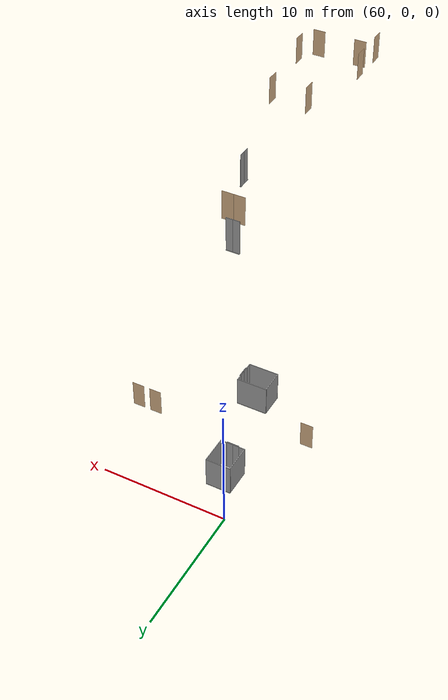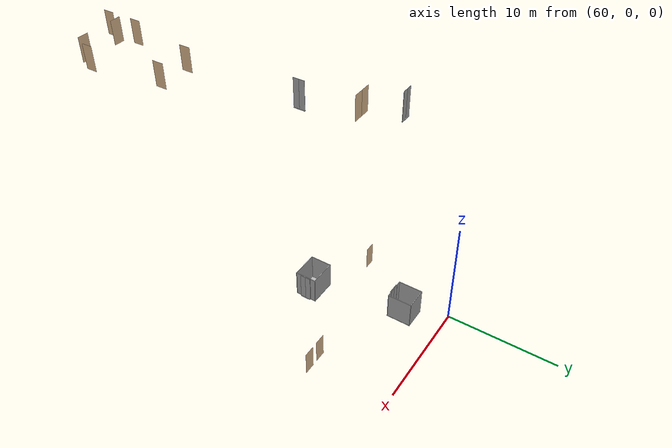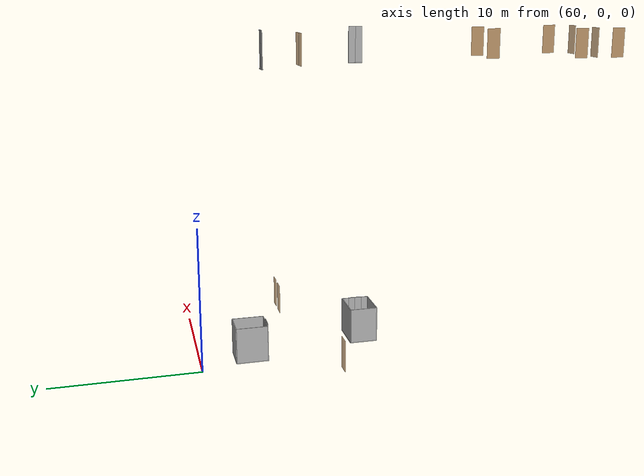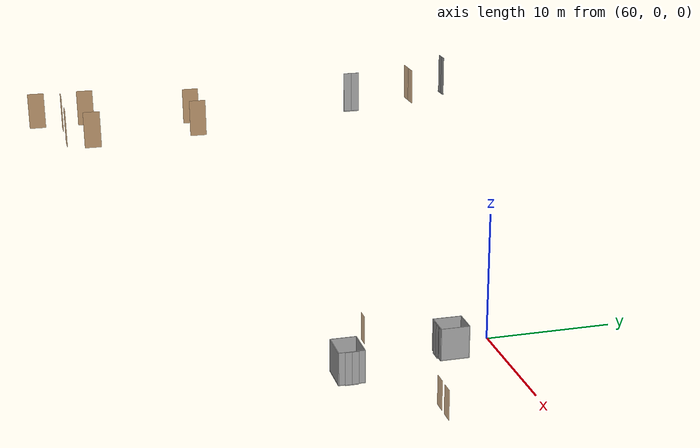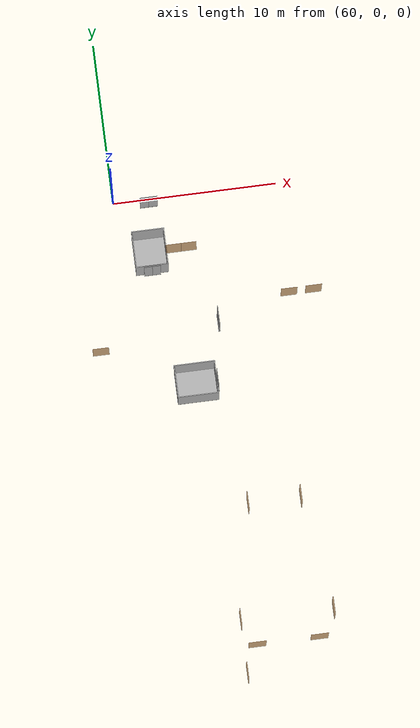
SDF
<sdf version="1.7">
 <world name="sim_world">
  <model name="l1_door12">
   <pose>58.1 -9.25 0.0 0 0 3.141592653589793</pose>
   <plugin name="door" filename="libdoor.so">
    <v_max_door>0.5</v_max_door>
    <a_max_door>0.3</a_max_door>
    <a_nom_door>0.15</a_nom_door>
    <dx_min_door>0.01</dx_min_door>
    <f_max_door>500.0</f_max_door>
    <door name="l1_door12" type="SwingDoor" left_joint_name="left_joint" right_joint_name="empty_joint"/>
   </plugin>
   <link name="left">
    <pose>0 0 1.11 0 0 0</pose>
    <visual name="left_visual">
     <geometry><box><size>0.99 0.03 2.2</size></box></geometry>
     <material>
      <ambient>0.5 0.25 0 0.6</ambient>
      <diffuse>0.5 0.25 0 0.6</diffuse>
      <pbr><metal><metalness>0.0</metalness></metal></pbr>
     </material>
    </visual>
    <collision name="left_collision">
     <geometry><box><size>0.99 0.03 2.2</size></box></geometry>
     <surface><contact><collide_bitmask>0x02</collide_bitmask></contact></surface>
    </collision>
    <inertial>
     <mass>50.0</mass>
     <inertia><ixx>20.17041666666667</ixx><iyy>24.250416666666673</iyy><izz>4.0875</izz></inertia>
    </inertial>
   </link>
   <joint name="left_joint" type="revolute">
    <parent>world</parent>
    <child>left</child>
    <axis><xyz>0 0 1</xyz><limit><lower>-1.57</lower><upper>0</upper></limit></axis>
    <pose>0.5 0 0 0 0 0</pose>
   </joint>
  </model>
  <model name="l1_door10">
   <pose>69.9 -7.0 0.0 0 0 0.0</pose>
   <plugin name="door" filename="libdoor.so">
    <v_max_door>0.5</v_max_door>
    <a_max_door>0.3</a_max_door>
    <a_nom_door>0.15</a_nom_door>
    <dx_min_door>0.01</dx_min_door>
    <f_max_door>500.0</f_max_door>
    <door name="l1_door10" type="SwingDoor" left_joint_name="left_joint" right_joint_name="empty_joint"/>
   </plugin>
   <link name="left">
    <pose>0 0 1.11 0 0 0</pose>
    <visual name="left_visual">
     <geometry><box><size>0.99 0.03 2.2</size></box></geometry>
     <material>
      <ambient>0.5 0.25 0 0.6</ambient>
      <diffuse>0.5 0.25 0 0.6</diffuse>
      <pbr><metal><metalness>0.0</metalness></metal></pbr>
     </material>
    </visual>
    <collision name="left_collision">
     <geometry><box><size>0.99 0.03 2.2</size></box></geometry>
     <surface><contact><collide_bitmask>0x02</collide_bitmask></contact></surface>
    </collision>
    <inertial>
     <mass>50.0</mass>
     <inertia><ixx>20.17041666666667</ixx><iyy>24.250416666666673</iyy><izz>4.0875</izz></inertia>
    </inertial>
   </link>
   <joint name="left_joint" type="revolute">
    <parent>world</parent>
    <child>left</child>
    <axis><xyz>0 0 1</xyz><limit><lower>-1.57</lower><upper>0</upper></limit></axis>
    <pose>0.5 0 0 0 0 0</pose>
   </joint>
  </model>
  <model name="l1_door8">
   <pose>71.4 -7.0 0.0 0 0 3.141592653589793</pose>
   <plugin name="door" filename="libdoor.so">
    <v_max_door>0.5</v_max_door>
    <a_max_door>0.3</a_max_door>
    <a_nom_door>0.15</a_nom_door>
    <dx_min_door>0.01</dx_min_door>
    <f_max_door>500.0</f_max_door>
    <door name="l1_door8" type="SwingDoor" left_joint_name="empty_joint" right_joint_name="right_joint"/>
   </plugin>
   <link name="right">
    <pose>0 0 1.11 0 0 0</pose>
    <visual name="right_visual">
     <geometry><box><size>0.99 0.03 2.2</size></box></geometry>
     <material>
      <ambient>0.5 0.25 0 0.6</ambient>
      <diffuse>0.5 0.25 0 0.6</diffuse>
      <pbr><metal><metalness>0.0</metalness></metal></pbr>
     </material>
    </visual>
    <collision name="right_collision">
     <geometry><box><size>0.99 0.03 2.2</size></box></geometry>
     <surface><contact><collide_bitmask>0x02</collide_bitmask></contact></surface>
    </collision>
    <inertial>
     <mass>50.0</mass>
     <inertia><ixx>20.17041666666667</ixx><iyy>24.250416666666673</iyy><izz>4.0875</izz></inertia>
    </inertial>
   </link>
   <joint name="right_joint" type="revolute">
    <parent>world</parent>
    <child>right</child>
    <axis><xyz>0 0 1</xyz><limit><lower>0</lower><upper>1.57</upper></limit></axis>
    <pose>0.5 0 0 0 0 0</pose>
   </joint>
  </model>
  <model name="door4">
   <pose>63.325 -7.5 20.0 0 0 3.141592653589793</pose>
   <link name="right">
    <pose>0.4375 0 1.11 0 0 0</pose>
    <visual name="right_visual">
     <geometry><box><size>0.865 0.03 2.2</size></box></geometry>
     <material>
      <ambient>0.5 0.25 0 0.6</ambient>
      <diffuse>0.5 0.25 0 0.6</diffuse>
      <pbr><metal><metalness>0.0</metalness></metal></pbr>
     </material>
    </visual>
    <collision name="right_collision">
     <geometry><box><size>0.865 0.03 2.2</size></box></geometry>
     <surface><contact><collide_bitmask>0x02</collide_bitmask></contact></surface>
    </collision>
    <inertial>
     <mass>50.0</mass>
     <inertia><ixx>20.17041666666667</ixx><iyy>23.284270833333338</iyy><izz>3.121354166666667</izz></inertia>
    </inertial>
   </link>
   <joint name="right_joint" type="revolute">
    <parent>world</parent>
    <child>right</child>
    <axis><xyz>0 0 1</xyz><limit><lower>0</lower><upper>1.57</upper></limit></axis>
    <pose>0.4375 0 0 0 0 0</pose>
   </joint>
   <link name="left">
    <pose>-0.4375 0 1.11 0 0 0</pose>
    <visual name="left_visual">
     <geometry><box><size>0.865 0.03 2.2</size></box></geometry>
     <material>
      <ambient>0.5 0.25 0 0.6</ambient>
      <diffuse>0.5 0.25 0 0.6</diffuse>
      <pbr><metal><metalness>0.0</metalness></metal></pbr>
     </material>
    </visual>
    <collision name="left_collision">
     <geometry><box><size>0.865 0.03 2.2</size></box></geometry>
     <surface><contact><collide_bitmask>0x02</collide_bitmask></contact></surface>
    </collision>
    <inertial>
     <mass>50.0</mass>
     <inertia><ixx>20.17041666666667</ixx><iyy>23.284270833333338</iyy><izz>3.121354166666667</izz></inertia>
    </inertial>
   </link>
   <joint name="left_joint" type="revolute">
    <parent>world</parent>
    <child>left</child>
    <axis><xyz>0 0 1</xyz><limit><lower>-1.57</lower><upper>0</upper></limit></axis>
    <pose>-0.4375 0 0 0 0 0</pose>
   </joint>
   <plugin name="door" filename="libdoor.so">
    <v_max_door>0.5</v_max_door>
    <a_max_door>0.3</a_max_door>
    <a_nom_door>0.15</a_nom_door>
    <dx_min_door>0.01</dx_min_door>
    <f_max_door>500.0</f_max_door>
    <door name="door4" type="DoubleSwingDoor" left_joint_name="left_joint" right_joint_name="right_joint"/>
   </plugin>
  </model>
  <model name="room18_door">
   <pose>65.2 -22.5 20.0 0 0 1.5707963267948966</pose>
   <plugin name="door" filename="libdoor.so">
    <v_max_door>0.5</v_max_door>
    <a_max_door>0.3</a_max_door>
    <a_nom_door>0.15</a_nom_door>
    <dx_min_door>0.01</dx_min_door>
    <f_max_door>500.0</f_max_door>
    <door name="room18_door" type="SwingDoor" left_joint_name="left_joint" right_joint_name="empty_joint"/>
   </plugin>
   <link name="left">
    <pose>0 0 1.11 0 0 0</pose>
    <visual name="left_visual">
     <geometry><box><size>0.99 0.03 2.2</size></box></geometry>
     <material>
      <ambient>0.5 0.25 0 0.6</ambient>
      <diffuse>0.5 0.25 0 0.6</diffuse>
      <pbr><metal><metalness>0.0</metalness></metal></pbr>
     </material>
    </visual>
    <collision name="left_collision">
     <geometry><box><size>0.99 0.03 2.2</size></box></geometry>
     <surface><contact><collide_bitmask>0x02</collide_bitmask></contact></surface>
    </collision>
    <inertial>
     <mass>50.0</mass>
     <inertia><ixx>20.17041666666667</ixx><iyy>24.250416666666673</iyy><izz>4.0875</izz></inertia>
    </inertial>
   </link>
   <joint name="left_joint" type="revolute">
    <parent>world</parent>
    <child>left</child>
    <axis><xyz>0 0 1</xyz><limit><lower>-1.57</lower><upper>0</upper></limit></axis>
    <pose>0.5 0 0 0 0 0</pose>
   </joint>
  </model>
  <model name="room19_door">
   <pose>63.95 -29.0 20.0 0 0 -1.5707963267948966</pose>
   <plugin name="door" filename="libdoor.so">
    <v_max_door>0.5</v_max_door>
    <a_max_door>0.3</a_max_door>
    <a_nom_door>0.15</a_nom_door>
    <dx_min_door>0.01</dx_min_door>
    <f_max_door>500.0</f_max_door>
    <door name="room19_door" type="SwingDoor" left_joint_name="empty_joint" right_joint_name="right_joint"/>
   </plugin>
   <link name="right">
    <pose>0 0 1.11 0 0 0</pose>
    <visual name="right_visual">
     <geometry><box><size>0.99 0.03 2.2</size></box></geometry>
     <material>
      <ambient>0.5 0.25 0 0.6</ambient>
      <diffuse>0.5 0.25 0 0.6</diffuse>
      <pbr><metal><metalness>0.0</metalness></metal></pbr>
     </material>
    </visual>
    <collision name="right_collision">
     <geometry><box><size>0.99 0.03 2.2</size></box></geometry>
     <surface><contact><collide_bitmask>0x02</collide_bitmask></contact></surface>
    </collision>
    <inertial>
     <mass>50.0</mass>
     <inertia><ixx>20.17041666666667</ixx><iyy>24.250416666666673</iyy><izz>4.0875</izz></inertia>
    </inertial>
   </link>
   <joint name="right_joint" type="revolute">
    <parent>world</parent>
    <child>right</child>
    <axis><xyz>0 0 1</xyz><limit><lower>0</lower><upper>1.57</upper></limit></axis>
    <pose>0.5 0 0 0 0 0</pose>
   </joint>
  </model>
  <model name="room20_door2">
   <pose>63.95 -32.0 20.0 0 0 -1.5707963267948966</pose>
   <plugin name="door" filename="libdoor.so">
    <v_max_door>0.5</v_max_door>
    <a_max_door>0.3</a_max_door>
    <a_nom_door>0.15</a_nom_door>
    <dx_min_door>0.01</dx_min_door>
    <f_max_door>500.0</f_max_door>
    <door name="room20_door2" type="SwingDoor" left_joint_name="empty_joint" right_joint_name="right_joint"/>
   </plugin>
   <link name="right">
    <pose>0 0 1.11 0 0 0</pose>
    <visual name="right_visual">
     <geometry><box><size>0.99 0.03 2.2</size></box></geometry>
     <material>
      <ambient>0.5 0.25 0 0.6</ambient>
      <diffuse>0.5 0.25 0 0.6</diffuse>
      <pbr><metal><metalness>0.0</metalness></metal></pbr>
     </material>
    </visual>
    <collision name="right_collision">
     <geometry><box><size>0.99 0.03 2.2</size></box></geometry>
     <surface><contact><collide_bitmask>0x02</collide_bitmask></contact></surface>
    </collision>
    <inertial>
     <mass>50.0</mass>
     <inertia><ixx>20.17041666666667</ixx><iyy>24.250416666666673</iyy><izz>4.0875</izz></inertia>
    </inertial>
   </link>
   <joint name="right_joint" type="revolute">
    <parent>world</parent>
    <child>right</child>
    <axis><xyz>0 0 1</xyz><limit><lower>0</lower><upper>1.57</upper></limit></axis>
    <pose>0.5 0 0 0 0 0</pose>
   </joint>
  </model>
  <model name="room20_door">
   <pose>64.7 -30.5 20.0 0 0 3.141592653589793</pose>
   <plugin name="door" filename="libdoor.so">
    <v_max_door>0.5</v_max_door>
    <a_max_door>0.3</a_max_door>
    <a_nom_door>0.15</a_nom_door>
    <dx_min_door>0.01</dx_min_door>
    <f_max_door>500.0</f_max_door>
    <door name="room20_door" type="SwingDoor" left_joint_name="left_joint" right_joint_name="empty_joint"/>
   </plugin>
   <link name="left">
    <pose>0 0 1.11 0 0 0</pose>
    <visual name="left_visual">
     <geometry><box><size>0.99 0.03 2.2</size></box></geometry>
     <material>
      <ambient>0.5 0.25 0 0.6</ambient>
      <diffuse>0.5 0.25 0 0.6</diffuse>
      <pbr><metal><metalness>0.0</metalness></metal></pbr>
     </material>
    </visual>
    <collision name="left_collision">
     <geometry><box><size>0.99 0.03 2.2</size></box></geometry>
     <surface><contact><collide_bitmask>0x02</collide_bitmask></contact></surface>
    </collision>
    <inertial>
     <mass>50.0</mass>
     <inertia><ixx>20.17041666666667</ixx><iyy>24.250416666666673</iyy><izz>4.0875</izz></inertia>
    </inertial>
   </link>
   <joint name="left_joint" type="revolute">
    <parent>world</parent>
    <child>left</child>
    <axis><xyz>0 0 1</xyz><limit><lower>-1.57</lower><upper>0</upper></limit></axis>
    <pose>0.5 0 0 0 0 0</pose>
   </joint>
  </model>
  <model name="room23_door">
   <pose>68.2 -22.5 20.0 0 0 1.5707963267948966</pose>
   <plugin name="door" filename="libdoor.so">
    <v_max_door>0.5</v_max_door>
    <a_max_door>0.3</a_max_door>
    <a_nom_door>0.15</a_nom_door>
    <dx_min_door>0.01</dx_min_door>
    <f_max_door>500.0</f_max_door>
    <door name="room23_door" type="SwingDoor" left_joint_name="empty_joint" right_joint_name="right_joint"/>
   </plugin>
   <link name="right">
    <pose>0 0 1.11 0 0 0</pose>
    <visual name="right_visual">
     <geometry><box><size>0.99 0.03 2.2</size></box></geometry>
     <material>
      <ambient>0.5 0.25 0 0.6</ambient>
      <diffuse>0.5 0.25 0 0.6</diffuse>
      <pbr><metal><metalness>0.0</metalness></metal></pbr>
     </material>
    </visual>
    <collision name="right_collision">
     <geometry><box><size>0.99 0.03 2.2</size></box></geometry>
     <surface><contact><collide_bitmask>0x02</collide_bitmask></contact></surface>
    </collision>
    <inertial>
     <mass>50.0</mass>
     <inertia><ixx>20.17041666666667</ixx><iyy>24.250416666666673</iyy><izz>4.0875</izz></inertia>
    </inertial>
   </link>
   <joint name="right_joint" type="revolute">
    <parent>world</parent>
    <child>right</child>
    <axis><xyz>0 0 1</xyz><limit><lower>0</lower><upper>1.57</upper></limit></axis>
    <pose>0.5 0 0 0 0 0</pose>
   </joint>
  </model>
  <model name="room21_door">
   <pose>68.2 -30.5 20.0 0 0 3.141592653589793</pose>
   <plugin name="door" filename="libdoor.so">
    <v_max_door>0.5</v_max_door>
    <a_max_door>0.3</a_max_door>
    <a_nom_door>0.15</a_nom_door>
    <dx_min_door>0.01</dx_min_door>
    <f_max_door>500.0</f_max_door>
    <door name="room21_door" type="SwingDoor" left_joint_name="left_joint" right_joint_name="empty_joint"/>
   </plugin>
   <link name="left">
    <pose>0 0 1.11 0 0 0</pose>
    <visual name="left_visual">
     <geometry><box><size>0.99 0.03 2.2</size></box></geometry>
     <material>
      <ambient>0.5 0.25 0 0.6</ambient>
      <diffuse>0.5 0.25 0 0.6</diffuse>
      <pbr><metal><metalness>0.0</metalness></metal></pbr>
     </material>
    </visual>
    <collision name="left_collision">
     <geometry><box><size>0.99 0.03 2.2</size></box></geometry>
     <surface><contact><collide_bitmask>0x02</collide_bitmask></contact></surface>
    </collision>
    <inertial>
     <mass>50.0</mass>
     <inertia><ixx>20.17041666666667</ixx><iyy>24.250416666666673</iyy><izz>4.0875</izz></inertia>
    </inertial>
   </link>
   <joint name="left_joint" type="revolute">
    <parent>world</parent>
    <child>left</child>
    <axis><xyz>0 0 1</xyz><limit><lower>-1.57</lower><upper>0</upper></limit></axis>
    <pose>0.5 0 0 0 0 0</pose>
   </joint>
  </model>
  <model name="room22_door">
   <pose>69.2 -29.0 20.0 0 0 -1.5707963267948966</pose>
   <plugin name="door" filename="libdoor.so">
    <v_max_door>0.5</v_max_door>
    <a_max_door>0.3</a_max_door>
    <a_nom_door>0.15</a_nom_door>
    <dx_min_door>0.01</dx_min_door>
    <f_max_door>500.0</f_max_door>
    <door name="room22_door" type="SwingDoor" left_joint_name="left_joint" right_joint_name="empty_joint"/>
   </plugin>
   <link name="left">
    <pose>0 0 1.11 0 0 0</pose>
    <visual name="left_visual">
     <geometry><box><size>0.99 0.03 2.2</size></box></geometry>
     <material>
      <ambient>0.5 0.25 0 0.6</ambient>
      <diffuse>0.5 0.25 0 0.6</diffuse>
      <pbr><metal><metalness>0.0</metalness></metal></pbr>
     </material>
    </visual>
    <collision name="left_collision">
     <geometry><box><size>0.99 0.03 2.2</size></box></geometry>
     <surface><contact><collide_bitmask>0x02</collide_bitmask></contact></surface>
    </collision>
    <inertial>
     <mass>50.0</mass>
     <inertia><ixx>20.17041666666667</ixx><iyy>24.250416666666673</iyy><izz>4.0875</izz></inertia>
    </inertial>
   </link>
   <joint name="left_joint" type="revolute">
    <parent>world</parent>
    <child>left</child>
    <axis><xyz>0 0 1</xyz><limit><lower>-1.57</lower><upper>0</upper></limit></axis>
    <pose>0.5 0 0 0 0 0</pose>
   </joint>
  </model>
  <model name="ShaftDoor_Lift1_L1_door">
   <pose>61.825 -4.675 0.0 0 0 0.0</pose>
   <link name="right_door">
    <pose>0.25 0 1.25 0 0 0</pose>
    <visual name="right_door_visual">
     <geometry><box><size>0.5 0.03 2.5</size></box></geometry>
     <material>
      <ambient>0.5 0.5 0.5 1</ambient>
      <diffuse>0.7 0.7 0.7 1</diffuse>
      <specular>0.6 0.6 0.6 1</specular>
      <emissive>0.1 0.1 0.1 1</emissive>
     </material>
    </visual>
    <collision name="right_door_collision">
     <geometry><box><size>0.5 0.03 2.5</size></box></geometry>
     <surface><contact><collide_bitmask>0x02</collide_bitmask></contact></surface>
    </collision>
   </link>
   <joint name="right_joint" type="prismatic">
    <parent>world</parent>
    <child>right_door</child>
    <axis><xyz>1 0 0</xyz><limit><lower>0</lower><upper>0.5</upper></limit></axis>
   </joint>
   <link name="left_door">
    <pose>-0.25 0 1.25 0 0 0</pose>
    <visual name="left_door_visual">
     <geometry><box><size>0.5 0.03 2.5</size></box></geometry>
     <material>
      <ambient>0.5 0.5 0.5 1</ambient>
      <diffuse>0.7 0.7 0.7 1</diffuse>
      <specular>0.6 0.6 0.6 1</specular>
      <emissive>0.1 0.1 0.1 1</emissive>
     </material>
    </visual>
    <collision name="left_door_collision">
     <geometry><box><size>0.5 0.03 2.5</size></box></geometry>
     <surface><contact><collide_bitmask>0x02</collide_bitmask></contact></surface>
    </collision>
   </link>
   <joint name="left_joint" type="prismatic">
    <parent>world</parent>
    <child>left_door</child>
    <axis><xyz>1 0 0</xyz><limit><lower>-0.5</lower><upper>0</upper></limit></axis>
   </joint>
   <link name="ramp">
    <pose>0 0 -0.025 0 0 0</pose>
    <visual name="ramp_visual">
     <geometry><box><size>1.0 0.1 0.05</size></box></geometry>
     <material>
      <ambient>0.5 0.5 0.5 1</ambient>
      <diffuse>0.7 0.7 0.7 1</diffuse>
      <specular>0.6 0.6 0.6 1</specular>
      <emissive>0.1 0.1 0.1 1</emissive>
     </material>
    </visual>
    <collision name="ramp_collision">
     <geometry><box><size>1.0 0.1 0.05</size></box></geometry>
     <surface><contact><collide_bitmask>0x02</collide_bitmask></contact></surface>
    </collision>
   </link>
   <joint name="ramp_joint" type="fixed"><parent>world</parent><child>ramp</child></joint>
   <plugin name="door" filename="libdoor.so">
    <v_max_door>0.3</v_max_door>
    <a_max_door>0.2</a_max_door>
    <a_nom_door>0.1</a_nom_door>
    <dx_min_door>0.0001</dx_min_door>
    <f_max_door>35.0</f_max_door>
    <door left_joint_name="left_joint" name="ShaftDoor_Lift1_L1_door" right_joint_name="right_joint" type="DoubleSlidingDoor"/>
   </plugin>
  </model>
  <model name="ShaftDoor_Lift1_L2_door">
   <pose>61.825 -4.675 20.0 0 0 0.0</pose>
   <link name="right_door">
    <pose>0.25 0 1.25 0 0 0</pose>
    <visual name="right_door_visual">
     <geometry><box><size>0.5 0.03 2.5</size></box></geometry>
     <material>
      <ambient>0.5 0.5 0.5 1</ambient>
      <diffuse>0.7 0.7 0.7 1</diffuse>
      <specular>0.6 0.6 0.6 1</specular>
      <emissive>0.1 0.1 0.1 1</emissive>
     </material>
    </visual>
    <collision name="right_door_collision">
     <geometry><box><size>0.5 0.03 2.5</size></box></geometry>
     <surface><contact><collide_bitmask>0x02</collide_bitmask></contact></surface>
    </collision>
   </link>
   <joint name="right_joint" type="prismatic">
    <parent>world</parent>
    <child>right_door</child>
    <axis><xyz>1 0 0</xyz><limit><lower>0</lower><upper>0.5</upper></limit></axis>
   </joint>
   <link name="left_door">
    <pose>-0.25 0 1.25 0 0 0</pose>
    <visual name="left_door_visual">
     <geometry><box><size>0.5 0.03 2.5</size></box></geometry>
     <material>
      <ambient>0.5 0.5 0.5 1</ambient>
      <diffuse>0.7 0.7 0.7 1</diffuse>
      <specular>0.6 0.6 0.6 1</specular>
      <emissive>0.1 0.1 0.1 1</emissive>
     </material>
    </visual>
    <collision name="left_door_collision">
     <geometry><box><size>0.5 0.03 2.5</size></box></geometry>
     <surface><contact><collide_bitmask>0x02</collide_bitmask></contact></surface>
    </collision>
   </link>
   <joint name="left_joint" type="prismatic">
    <parent>world</parent>
    <child>left_door</child>
    <axis><xyz>1 0 0</xyz><limit><lower>-0.5</lower><upper>0</upper></limit></axis>
   </joint>
   <link name="ramp">
    <pose>0 0 -0.025 0 0 0</pose>
    <visual name="ramp_visual">
     <geometry><box><size>1.0 0.1 0.05</size></box></geometry>
     <material>
      <ambient>0.5 0.5 0.5 1</ambient>
      <diffuse>0.7 0.7 0.7 1</diffuse>
      <specular>0.6 0.6 0.6 1</specular>
      <emissive>0.1 0.1 0.1 1</emissive>
     </material>
    </visual>
    <collision name="ramp_collision">
     <geometry><box><size>1.0 0.1 0.05</size></box></geometry>
     <surface><contact><collide_bitmask>0x02</collide_bitmask></contact></surface>
    </collision>
   </link>
   <joint name="ramp_joint" type="fixed"><parent>world</parent><child>ramp</child></joint>
   <plugin name="door" filename="libdoor.so">
    <v_max_door>0.3</v_max_door>
    <a_max_door>0.2</a_max_door>
    <a_nom_door>0.1</a_nom_door>
    <dx_min_door>0.0001</dx_min_door>
    <f_max_door>35.0</f_max_door>
    <door left_joint_name="left_joint" name="ShaftDoor_Lift1_L2_door" right_joint_name="right_joint" type="DoubleSlidingDoor"/>
   </plugin>
  </model>
  <model name="Lift1">
   <link name="platform">
    <inertial>
     <mass>1200</mass>
     <inertia><ixx>400.25000000000006</ixx><iyy>506.50000000000006</iyy><izz>906.25</izz></inertia>
    </inertial>
    <visual name="floor">
     <pose>0 0 -0.025 0 0 0</pose>
     <geometry><box><size>2.0 2.25 0.05</size></box></geometry>
     <material>
      <ambient>0.5 0.5 0.5 1</ambient>
      <diffuse>0.7 0.7 0.7 1</diffuse>
      <specular>0.6 0.6 0.6 1</specular>
      <emissive>0.1 0.1 0.1 1</emissive>
     </material>
    </visual>
    <collision name="floor">
     <pose>0 0 -0.025 0 0 0</pose>
     <geometry><box><size>2.0 2.25 0.05</size></box></geometry>
     <surface><contact><collide_bitmask>0x01</collide_bitmask></contact></surface>
    </collision>
    <visual name="frontwall1">
     <pose>0.0 1.1 1.25 0 0 0</pose>
     <geometry><box><size>2.0 0.05 2.5</size></box></geometry>
     <material>
      <ambient>0.5 0.5 0.5 1</ambient>
      <diffuse>0.7 0.7 0.7 1</diffuse>
      <specular>0.6 0.6 0.6 1</specular>
      <emissive>0.1 0.1 0.1 1</emissive>
     </material>
    </visual>
    <collision name="frontwall1">
     <pose>0.0 1.1 1.25 0 0 0</pose>
     <geometry><box><size>2.0 0.05 2.5</size></box></geometry>
     <surface><contact><collide_bitmask>0x01</collide_bitmask></contact></surface>
    </collision>
    <visual name="backwall1">
     <pose>-0.75 -1.1 1.25 0 0 0</pose>
     <geometry><box><size>0.5 0.05 2.5</size></box></geometry>
     <material>
      <ambient>0.5 0.5 0.5 1</ambient>
      <diffuse>0.7 0.7 0.7 1</diffuse>
      <specular>0.6 0.6 0.6 1</specular>
      <emissive>0.1 0.1 0.1 1</emissive>
     </material>
    </visual>
    <collision name="backwall1">
     <pose>-0.75 -1.1 1.25 0 0 0</pose>
     <geometry><box><size>0.5 0.05 2.5</size></box></geometry>
     <surface><contact><collide_bitmask>0x01</collide_bitmask></contact></surface>
    </collision>
    <visual name="backwall2">
     <pose>0.75 -1.1 1.25 0 0 0</pose>
     <geometry><box><size>0.5 0.05 2.5</size></box></geometry>
     <material>
      <ambient>0.5 0.5 0.5 1</ambient>
      <diffuse>0.7 0.7 0.7 1</diffuse>
      <specular>0.6 0.6 0.6 1</specular>
      <emissive>0.1 0.1 0.1 1</emissive>
     </material>
    </visual>
    <collision name="backwall2">
     <pose>0.75 -1.1 1.25 0 0 0</pose>
     <geometry><box><size>0.5 0.05 2.5</size></box></geometry>
     <surface><contact><collide_bitmask>0x01</collide_bitmask></contact></surface>
    </collision>
    <visual name="leftwall1">
     <pose>-0.975 0.0 1.25 0 0 1.5707963267948966</pose>
     <geometry><box><size>2.15 0.05 2.5</size></box></geometry>
     <material>
      <ambient>0.5 0.5 0.5 1</ambient>
      <diffuse>0.7 0.7 0.7 1</diffuse>
      <specular>0.6 0.6 0.6 1</specular>
      <emissive>0.1 0.1 0.1 1</emissive>
     </material>
    </visual>
    <collision name="leftwall1">
     <pose>-0.975 0.0 1.25 0 0 1.5707963267948966</pose>
     <geometry><box><size>2.15 0.05 2.5</size></box></geometry>
     <surface><contact><collide_bitmask>0x01</collide_bitmask></contact></surface>
    </collision>
    <visual name="rightwall1">
     <pose>0.975 0.0 1.25 0 0 1.5707963267948966</pose>
     <geometry><box><size>2.15 0.05 2.5</size></box></geometry>
     <material>
      <ambient>0.5 0.5 0.5 1</ambient>
      <diffuse>0.7 0.7 0.7 1</diffuse>
      <specular>0.6 0.6 0.6 1</specular>
      <emissive>0.1 0.1 0.1 1</emissive>
     </material>
    </visual>
    <collision name="rightwall1">
     <pose>0.975 0.0 1.25 0 0 1.5707963267948966</pose>
     <geometry><box><size>2.15 0.05 2.5</size></box></geometry>
     <surface><contact><collide_bitmask>0x01</collide_bitmask></contact></surface>
    </collision>
   </link>
   <joint name="cabin_joint" type="prismatic">
    <parent>world</parent>
    <child>platform</child>
    <axis><xyz>0 0 1</xyz></axis>
   </joint>
   <link name="CabinDoor_Lift1_door_right_door">
    <pose>0.25 -1.1 1.25 0 0 0.0</pose>
    <visual name="CabinDoor_Lift1_door_right_door_visual">
     <geometry><box><size>0.5 0.03 2.5</size></box></geometry>
     <material>
      <ambient>0.5 0.5 0.5 1</ambient>
      <diffuse>0.7 0.7 0.7 1</diffuse>
      <specular>0.6 0.6 0.6 1</specular>
      <emissive>0.1 0.1 0.1 1</emissive>
     </material>
    </visual>
    <collision name="CabinDoor_Lift1_door_right_door_collision">
     <geometry><box><size>0.5 0.03 2.5</size></box></geometry>
     <surface><contact><collide_bitmask>0x02</collide_bitmask></contact></surface>
    </collision>
   </link>
   <joint name="CabinDoor_Lift1_door_right_joint" type="prismatic">
    <parent>platform</parent>
    <child>CabinDoor_Lift1_door_right_door</child>
    <axis><xyz>1 0 0</xyz><limit><lower>0</lower><upper>0.5</upper></limit></axis>
   </joint>
   <link name="CabinDoor_Lift1_door_left_door">
    <pose>-0.25 -1.1 1.25 0 0 0.0</pose>
    <visual name="CabinDoor_Lift1_door_left_door_visual">
     <geometry><box><size>0.5 0.03 2.5</size></box></geometry>
     <material>
      <ambient>0.5 0.5 0.5 1</ambient>
      <diffuse>0.7 0.7 0.7 1</diffuse>
      <specular>0.6 0.6 0.6 1</specular>
      <emissive>0.1 0.1 0.1 1</emissive>
     </material>
    </visual>
    <collision name="CabinDoor_Lift1_door_left_door_collision">
     <geometry><box><size>0.5 0.03 2.5</size></box></geometry>
     <surface><contact><collide_bitmask>0x02</collide_bitmask></contact></surface>
    </collision>
   </link>
   <joint name="CabinDoor_Lift1_door_left_joint" type="prismatic">
    <parent>platform</parent>
    <child>CabinDoor_Lift1_door_left_door</child>
    <axis><xyz>1 0 0</xyz><limit><lower>-0.5</lower><upper>0</upper></limit></axis>
   </joint>
   <plugin name="door" filename="libdoor.so">
    <v_max_door>0.3</v_max_door>
    <a_max_door>0.2</a_max_door>
    <a_nom_door>0.1</a_nom_door>
    <dx_min_door>0.0001</dx_min_door>
    <f_max_door>35.0</f_max_door>
    <door left_joint_name="CabinDoor_Lift1_door_left_joint" name="CabinDoor_Lift1_door" right_joint_name="CabinDoor_Lift1_door_right_joint" type="DoubleSlidingDoor"/>
   </plugin>
   <plugin name="lift" filename="liblift.so">
    <lift_name>Lift1</lift_name>
    <floor name="L1" elevation="0.0">
     <door_pair cabin_door="CabinDoor_Lift1_door" shaft_door="ShaftDoor_Lift1_L1_door"/>
    </floor>
    <floor name="L2" elevation="20.0">
     <door_pair cabin_door="CabinDoor_Lift1_door" shaft_door="ShaftDoor_Lift1_L2_door"/>
    </floor>
    <initial_floor>L1</initial_floor>
    <v_max_cabin>2.0</v_max_cabin>
    <a_max_cabin>1.2</a_max_cabin>
    <a_nom_cabin>1.0</a_nom_cabin>
    <dx_min_cabin>0.001</dx_min_cabin>
    <f_max_cabin>25323.0</f_max_cabin>
    <cabin_joint_name>cabin_joint</cabin_joint_name>
   </plugin>
   <pose>61.825 -3.5 0 0 0 0.0</pose>
  </model>
  <model name="ShaftDoor_Lift3_L1_door">
   <pose>64.9 -11.875 0.0 0 0 1.5708</pose>
   <link name="right_door">
    <pose>0.25 0 1.25 0 0 0</pose>
    <visual name="right_door_visual">
     <geometry><box><size>0.5 0.03 2.5</size></box></geometry>
     <material>
      <ambient>0.5 0.5 0.5 1</ambient>
      <diffuse>0.7 0.7 0.7 1</diffuse>
      <specular>0.6 0.6 0.6 1</specular>
      <emissive>0.1 0.1 0.1 1</emissive>
     </material>
    </visual>
    <collision name="right_door_collision">
     <geometry><box><size>0.5 0.03 2.5</size></box></geometry>
     <surface><contact><collide_bitmask>0x02</collide_bitmask></contact></surface>
    </collision>
   </link>
   <joint name="right_joint" type="prismatic">
    <parent>world</parent>
    <child>right_door</child>
    <axis><xyz>1 0 0</xyz><limit><lower>0</lower><upper>0.5</upper></limit></axis>
   </joint>
   <link name="left_door">
    <pose>-0.25 0 1.25 0 0 0</pose>
    <visual name="left_door_visual">
     <geometry><box><size>0.5 0.03 2.5</size></box></geometry>
     <material>
      <ambient>0.5 0.5 0.5 1</ambient>
      <diffuse>0.7 0.7 0.7 1</diffuse>
      <specular>0.6 0.6 0.6 1</specular>
      <emissive>0.1 0.1 0.1 1</emissive>
     </material>
    </visual>
    <collision name="left_door_collision">
     <geometry><box><size>0.5 0.03 2.5</size></box></geometry>
     <surface><contact><collide_bitmask>0x02</collide_bitmask></contact></surface>
    </collision>
   </link>
   <joint name="left_joint" type="prismatic">
    <parent>world</parent>
    <child>left_door</child>
    <axis><xyz>1 0 0</xyz><limit><lower>-0.5</lower><upper>0</upper></limit></axis>
   </joint>
   <link name="ramp">
    <pose>0 0 -0.025 0 0 0</pose>
    <visual name="ramp_visual">
     <geometry><box><size>1.0 0.1 0.05</size></box></geometry>
     <material>
      <ambient>0.5 0.5 0.5 1</ambient>
      <diffuse>0.7 0.7 0.7 1</diffuse>
      <specular>0.6 0.6 0.6 1</specular>
      <emissive>0.1 0.1 0.1 1</emissive>
     </material>
    </visual>
    <collision name="ramp_collision">
     <geometry><box><size>1.0 0.1 0.05</size></box></geometry>
     <surface><contact><collide_bitmask>0x02</collide_bitmask></contact></surface>
    </collision>
   </link>
   <joint name="ramp_joint" type="fixed"><parent>world</parent><child>ramp</child></joint>
   <plugin name="door" filename="libdoor.so">
    <v_max_door>0.3</v_max_door>
    <a_max_door>0.2</a_max_door>
    <a_nom_door>0.1</a_nom_door>
    <dx_min_door>0.0001</dx_min_door>
    <f_max_door>35.0</f_max_door>
    <door left_joint_name="left_joint" name="ShaftDoor_Lift3_L1_door" right_joint_name="right_joint" type="DoubleSlidingDoor"/>
   </plugin>
  </model>
  <model name="ShaftDoor_Lift3_L2_door">
   <pose>64.9 -11.875 20.0 0 0 1.5708</pose>
   <link name="right_door">
    <pose>0.25 0 1.25 0 0 0</pose>
    <visual name="right_door_visual">
     <geometry><box><size>0.5 0.03 2.5</size></box></geometry>
     <material>
      <ambient>0.5 0.5 0.5 1</ambient>
      <diffuse>0.7 0.7 0.7 1</diffuse>
      <specular>0.6 0.6 0.6 1</specular>
      <emissive>0.1 0.1 0.1 1</emissive>
     </material>
    </visual>
    <collision name="right_door_collision">
     <geometry><box><size>0.5 0.03 2.5</size></box></geometry>
     <surface><contact><collide_bitmask>0x02</collide_bitmask></contact></surface>
    </collision>
   </link>
   <joint name="right_joint" type="prismatic">
    <parent>world</parent>
    <child>right_door</child>
    <axis><xyz>1 0 0</xyz><limit><lower>0</lower><upper>0.5</upper></limit></axis>
   </joint>
   <link name="left_door">
    <pose>-0.25 0 1.25 0 0 0</pose>
    <visual name="left_door_visual">
     <geometry><box><size>0.5 0.03 2.5</size></box></geometry>
     <material>
      <ambient>0.5 0.5 0.5 1</ambient>
      <diffuse>0.7 0.7 0.7 1</diffuse>
      <specular>0.6 0.6 0.6 1</specular>
      <emissive>0.1 0.1 0.1 1</emissive>
     </material>
    </visual>
    <collision name="left_door_collision">
     <geometry><box><size>0.5 0.03 2.5</size></box></geometry>
     <surface><contact><collide_bitmask>0x02</collide_bitmask></contact></surface>
    </collision>
   </link>
   <joint name="left_joint" type="prismatic">
    <parent>world</parent>
    <child>left_door</child>
    <axis><xyz>1 0 0</xyz><limit><lower>-0.5</lower><upper>0</upper></limit></axis>
   </joint>
   <link name="ramp">
    <pose>0 0 -0.025 0 0 0</pose>
    <visual name="ramp_visual">
     <geometry><box><size>1.0 0.1 0.05</size></box></geometry>
     <material>
      <ambient>0.5 0.5 0.5 1</ambient>
      <diffuse>0.7 0.7 0.7 1</diffuse>
      <specular>0.6 0.6 0.6 1</specular>
      <emissive>0.1 0.1 0.1 1</emissive>
     </material>
    </visual>
    <collision name="ramp_collision">
     <geometry><box><size>1.0 0.1 0.05</size></box></geometry>
     <surface><contact><collide_bitmask>0x02</collide_bitmask></contact></surface>
    </collision>
   </link>
   <joint name="ramp_joint" type="fixed"><parent>world</parent><child>ramp</child></joint>
   <plugin name="door" filename="libdoor.so">
    <v_max_door>0.3</v_max_door>
    <a_max_door>0.2</a_max_door>
    <a_nom_door>0.1</a_nom_door>
    <dx_min_door>0.0001</dx_min_door>
    <f_max_door>35.0</f_max_door>
    <door left_joint_name="left_joint" name="ShaftDoor_Lift3_L2_door" right_joint_name="right_joint" type="DoubleSlidingDoor"/>
   </plugin>
  </model>
  <model name="Lift3">
   <link name="platform">
    <inertial>
     <mass>1200</mass>
     <inertia><ixx>625.25</ixx><iyy>400.25000000000006</iyy><izz>1025.0</izz></inertia>
    </inertial>
    <visual name="floor">
     <pose>0 0 -0.025 0 0 0</pose>
     <geometry><box><size>2.5 2.0 0.05</size></box></geometry>
     <material>
      <ambient>0.5 0.5 0.5 1</ambient>
      <diffuse>0.7 0.7 0.7 1</diffuse>
      <specular>0.6 0.6 0.6 1</specular>
      <emissive>0.1 0.1 0.1 1</emissive>
     </material>
    </visual>
    <collision name="floor">
     <pose>0 0 -0.025 0 0 0</pose>
     <geometry><box><size>2.5 2.0 0.05</size></box></geometry>
     <surface><contact><collide_bitmask>0x01</collide_bitmask></contact></surface>
    </collision>
    <visual name="frontwall1">
     <pose>0.0 0.975 1.25 0 0 0</pose>
     <geometry><box><size>2.5 0.05 2.5</size></box></geometry>
     <material>
      <ambient>0.5 0.5 0.5 1</ambient>
      <diffuse>0.7 0.7 0.7 1</diffuse>
      <specular>0.6 0.6 0.6 1</specular>
      <emissive>0.1 0.1 0.1 1</emissive>
     </material>
    </visual>
    <collision name="frontwall1">
     <pose>0.0 0.975 1.25 0 0 0</pose>
     <geometry><box><size>2.5 0.05 2.5</size></box></geometry>
     <surface><contact><collide_bitmask>0x01</collide_bitmask></contact></surface>
    </collision>
    <visual name="backwall1">
     <pose>0.0 -0.975 1.25 0 0 0</pose>
     <geometry><box><size>2.5 0.05 2.5</size></box></geometry>
     <material>
      <ambient>0.5 0.5 0.5 1</ambient>
      <diffuse>0.7 0.7 0.7 1</diffuse>
      <specular>0.6 0.6 0.6 1</specular>
      <emissive>0.1 0.1 0.1 1</emissive>
     </material>
    </visual>
    <collision name="backwall1">
     <pose>0.0 -0.975 1.25 0 0 0</pose>
     <geometry><box><size>2.5 0.05 2.5</size></box></geometry>
     <surface><contact><collide_bitmask>0x01</collide_bitmask></contact></surface>
    </collision>
    <visual name="leftwall1">
     <pose>-1.225 0.0 1.25 0 0 1.5707963267948966</pose>
     <geometry><box><size>1.9 0.05 2.5</size></box></geometry>
     <material>
      <ambient>0.5 0.5 0.5 1</ambient>
      <diffuse>0.7 0.7 0.7 1</diffuse>
      <specular>0.6 0.6 0.6 1</specular>
      <emissive>0.1 0.1 0.1 1</emissive>
     </material>
    </visual>
    <collision name="leftwall1">
     <pose>-1.225 0.0 1.25 0 0 1.5707963267948966</pose>
     <geometry><box><size>1.9 0.05 2.5</size></box></geometry>
     <surface><contact><collide_bitmask>0x01</collide_bitmask></contact></surface>
    </collision>
    <visual name="rightwall1">
     <pose>1.225 -0.725 1.25 0 0 1.5707963267948966</pose>
     <geometry><box><size>0.44999999999999996 0.05 2.5</size></box></geometry>
     <material>
      <ambient>0.5 0.5 0.5 1</ambient>
      <diffuse>0.7 0.7 0.7 1</diffuse>
      <specular>0.6 0.6 0.6 1</specular>
      <emissive>0.1 0.1 0.1 1</emissive>
     </material>
    </visual>
    <collision name="rightwall1">
     <pose>1.225 -0.725 1.25 0 0 1.5707963267948966</pose>
     <geometry><box><size>0.44999999999999996 0.05 2.5</size></box></geometry>
     <surface><contact><collide_bitmask>0x01</collide_bitmask></contact></surface>
    </collision>
    <visual name="rightwall2">
     <pose>1.225 0.725 1.25 0 0 1.5707963267948966</pose>
     <geometry><box><size>0.44999999999999996 0.05 2.5</size></box></geometry>
     <material>
      <ambient>0.5 0.5 0.5 1</ambient>
      <diffuse>0.7 0.7 0.7 1</diffuse>
      <specular>0.6 0.6 0.6 1</specular>
      <emissive>0.1 0.1 0.1 1</emissive>
     </material>
    </visual>
    <collision name="rightwall2">
     <pose>1.225 0.725 1.25 0 0 1.5707963267948966</pose>
     <geometry><box><size>0.44999999999999996 0.05 2.5</size></box></geometry>
     <surface><contact><collide_bitmask>0x01</collide_bitmask></contact></surface>
    </collision>
   </link>
   <joint name="cabin_joint" type="prismatic">
    <parent>world</parent>
    <child>platform</child>
    <axis><xyz>0 0 1</xyz></axis>
   </joint>
   <link name="CabinDoor_Lift3_door_right_door">
    <pose>1.2249990816987242 0.24999999999831343 1.25 0 0 1.5708</pose>
    <visual name="CabinDoor_Lift3_door_right_door_visual">
     <geometry><box><size>0.5 0.03 2.5</size></box></geometry>
     <material>
      <ambient>0.5 0.5 0.5 1</ambient>
      <diffuse>0.7 0.7 0.7 1</diffuse>
      <specular>0.6 0.6 0.6 1</specular>
      <emissive>0.1 0.1 0.1 1</emissive>
     </material>
    </visual>
    <collision name="CabinDoor_Lift3_door_right_door_collision">
     <geometry><box><size>0.5 0.03 2.5</size></box></geometry>
     <surface><contact><collide_bitmask>0x02</collide_bitmask></contact></surface>
    </collision>
   </link>
   <joint name="CabinDoor_Lift3_door_right_joint" type="prismatic">
    <parent>platform</parent>
    <child>CabinDoor_Lift3_door_right_door</child>
    <axis><xyz>1 0 0</xyz><limit><lower>0</lower><upper>0.5</upper></limit></axis>
   </joint>
   <link name="CabinDoor_Lift3_door_left_door">
    <pose>1.225000918301276 -0.24999999999831343 1.25 0 0 1.5708</pose>
    <visual name="CabinDoor_Lift3_door_left_door_visual">
     <geometry><box><size>0.5 0.03 2.5</size></box></geometry>
     <material>
      <ambient>0.5 0.5 0.5 1</ambient>
      <diffuse>0.7 0.7 0.7 1</diffuse>
      <specular>0.6 0.6 0.6 1</specular>
      <emissive>0.1 0.1 0.1 1</emissive>
     </material>
    </visual>
    <collision name="CabinDoor_Lift3_door_left_door_collision">
     <geometry><box><size>0.5 0.03 2.5</size></box></geometry>
     <surface><contact><collide_bitmask>0x02</collide_bitmask></contact></surface>
    </collision>
   </link>
   <joint name="CabinDoor_Lift3_door_left_joint" type="prismatic">
    <parent>platform</parent>
    <child>CabinDoor_Lift3_door_left_door</child>
    <axis><xyz>1 0 0</xyz><limit><lower>-0.5</lower><upper>0</upper></limit></axis>
   </joint>
   <plugin name="door" filename="libdoor.so">
    <v_max_door>0.3</v_max_door>
    <a_max_door>0.2</a_max_door>
    <a_nom_door>0.1</a_nom_door>
    <dx_min_door>0.0001</dx_min_door>
    <f_max_door>35.0</f_max_door>
    <door left_joint_name="CabinDoor_Lift3_door_left_joint" name="CabinDoor_Lift3_door" right_joint_name="CabinDoor_Lift3_door_right_joint" type="DoubleSlidingDoor"/>
   </plugin>
   <plugin name="lift" filename="liblift.so">
    <lift_name>Lift3</lift_name>
    <floor name="L1" elevation="0.0">
     <door_pair cabin_door="CabinDoor_Lift3_door" shaft_door="ShaftDoor_Lift3_L1_door"/>
    </floor>
    <floor name="L2" elevation="20.0">
     <door_pair cabin_door="CabinDoor_Lift3_door" shaft_door="ShaftDoor_Lift3_L2_door"/>
    </floor>
    <initial_floor>L1</initial_floor>
    <v_max_cabin>2.0</v_max_cabin>
    <a_max_cabin>1.2</a_max_cabin>
    <a_nom_cabin>1.0</a_nom_cabin>
    <dx_min_cabin>0.001</dx_min_cabin>
    <f_max_cabin>25323.0</f_max_cabin>
    <cabin_joint_name>cabin_joint</cabin_joint_name>
   </plugin>
   <pose>63.6 -11.875 0 0 0 0.0</pose>
  </model>
 </world>
</sdf>
